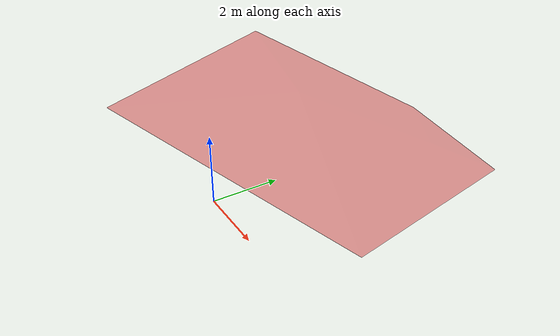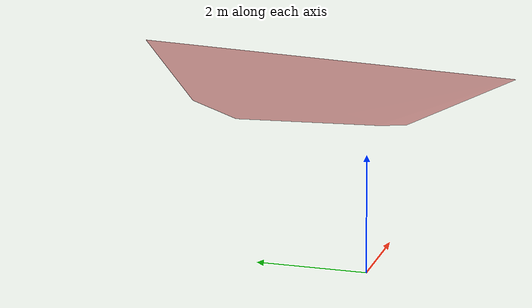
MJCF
<mujoco>
    <option density="1.2" viscosity="2e-05" wind="0 0 0"/>
    <worldbody>
        <light name="top" pos="0 0 5"/>
        <!-- Body -->

    <body name="body" pos="0 0 1" euler="0 0 0">
        <freejoint/>
        <!-- Main Wing -->
        <geom name="stl-wing"  density="1.67" rgba="0.8 0.2 0.2 0.5" type="mesh" mesh="stl-wing-mesh"/>
        <camera name="fixed" pos="-100 -100 -10" xyaxes="1 0 0 0 1 2"/>
        <camera name="track" pos="0 0 0" xyaxes="1 2 0 0 1 2" mode="track"/>
    </body>

        <!-- Landing Platform -->
        <body name="platform" pos="0 0 0">
            <geom name="platform-geom" type="box" size="1500 1500 1" rgba="1 1 1 1" pos="0 0 -80"/>
        </body>
    </worldbody>

        <asset>
            <mesh name="stl-wing-mesh" vertex="3.199205100588254 1.2149707833695684 1.4585483453479453 4.969442007674797 0.9252883968456701 1.0693797290342446 2.6158103484703994 1.9257681175854366 1.6242111985326968 5.144385675844952 4.7842690374440195 1.1390264815635862 3.6554099565494136 3.1138161876701984 1.4487001094313225 5.748104092399318 0.3572365034519164 1.0285335017324417 0.707072617195861 0.5460821313105634 2.0502125932264192 2.5776911566135197 4.6283292824775 1.737598011322536 -0.48927323820621216 -2.3431013811154666 2.266230728904521 3.880134137162551 3.9963141167582377 1.4671783913010332 -2.232195276158853 2.6959428552750966 2.8309740331723154 0.9630391785906532 2.139859672884939 2.163930440840706"/>
        </asset>
</mujoco>
